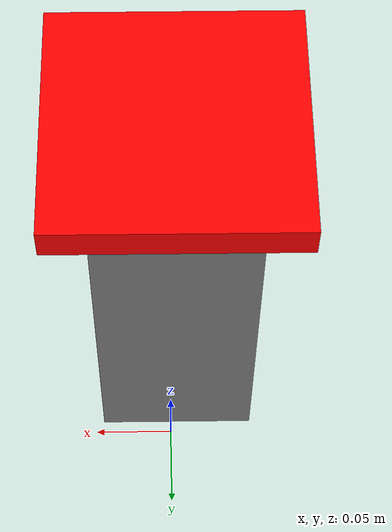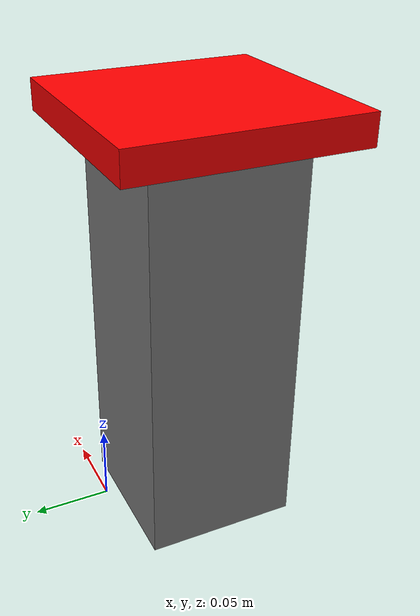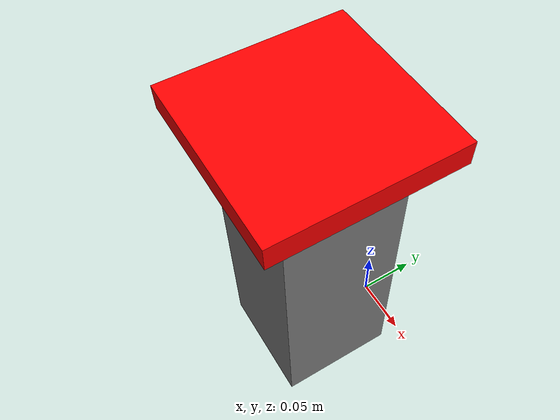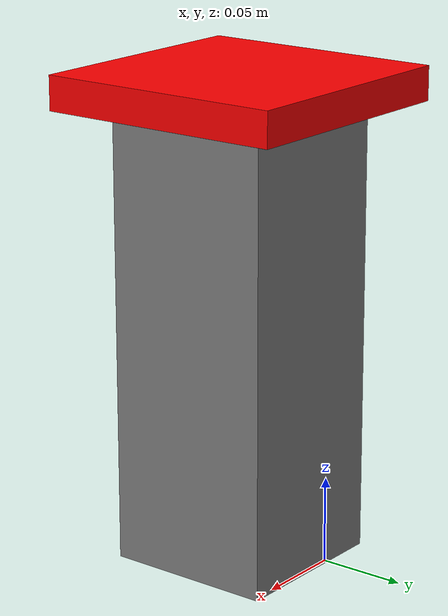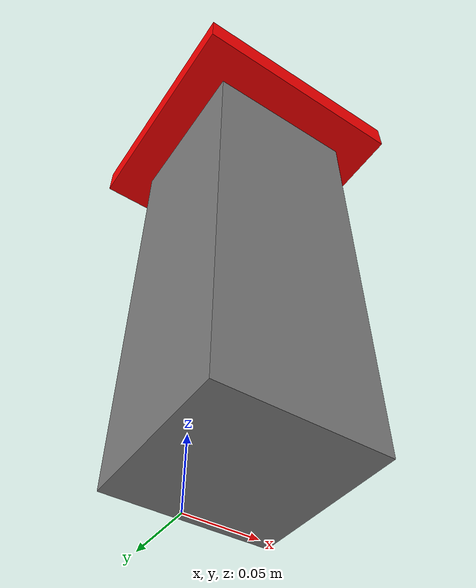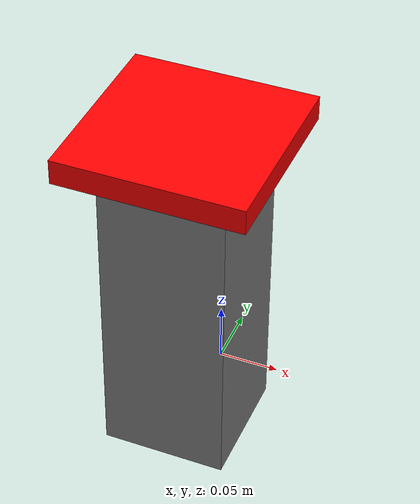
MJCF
<mujoco model="tetrapack_gripper">
  <option solver="CG" tolerance="1e-6"/>
  <size nconmax="500" njmax="5000" nstack="50000"/>
  <asset>
    <texture file="../textures/milk.png" name="tex-milk" type="2d"/>
    <material name="milk" reflectance="0.5" texrepeat="1 1" texture="tex-milk" texuniform="true"/>  </asset>
  <worldbody>
    <!--For soft gripper-->
    <!--For hard gripper-->
    <body name="gripper_base" pos="-0.004 -0.063 0.128" quat="0. 0. 0. 1">
      <geom name="box_collision" size="0.05 0.05 0.14" type="box" mass="0.001" friction="0.0001 0.005 0.0001" group="0"/>
      <geom name="box_visual" size="0.05 0.05 0.14" type="box" group="1"/>
      <!--For Soft object in container-->
      <!--For solid objects in container-->
      <site name="ft_frame" pos="0 0 0.135" size="0.074 0.074 0.01" rgba="1 0 0 1" type="box" group="1"/>
      <site name="grip_site" pos="0 0 0.135" size="0.074 0.074 0.01" rgba="1 0 0 0.5" type="box" group="1"/>
      <site name="grip_site_cylinder" pos="0 0 0.135" size="0.074 0.074 0.01" rgba="0 1 0 0.3" type="box" group="1"/>
    </body>
  </worldbody>
  <sensor>
    <force name="force_ee" site="ft_frame"/>
    <torque name="torque_ee" site="ft_frame"/>
  </sensor>
</mujoco>
